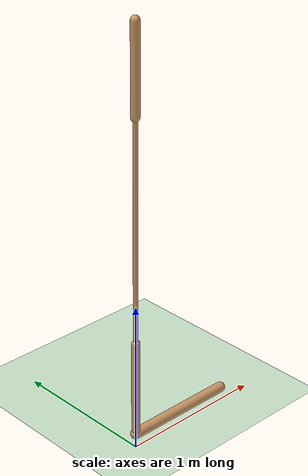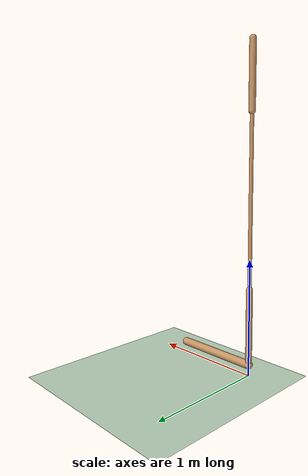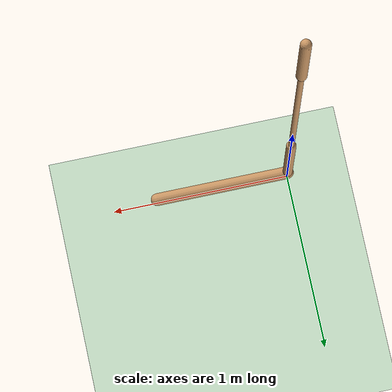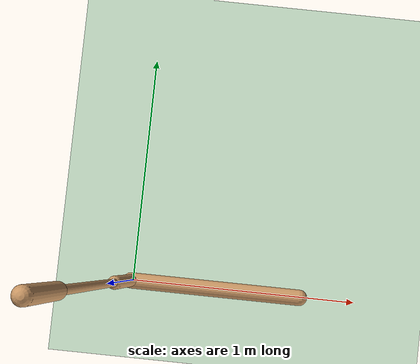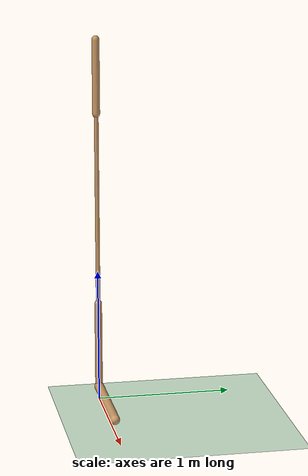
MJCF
<mujoco model="walker2d">
  <compiler angle="degree" inertiafromgeom="true" />
  <default>
    <joint armature="0.01" damping=".1" limited="true" />
    <geom conaffinity="0" condim="3" contype="1" density="1000" friction=".7 .1 .1" rgba="0.8 0.6 .4 1" />
  </default>
  <option integrator="RK4" timestep="0.002" />
  <worldbody>
    <light cutoff="100" diffuse="1 1 1" dir="-0 0 -1.3" directional="true" exponent="1" pos="0 0 1.3" specular=".1 .1 .1" />
    <geom conaffinity="1" condim="3" name="floor" pos="0 0 0" rgba="0.8 0.9 0.8 1" size="40 40 40" type="plane" material="MatPlane" />
    <body name="torso" pos="0 0 2.47319678068161">
      <camera name="track" mode="trackcom" pos="0 -5 -1.25" xyaxes="1 0 0 0 0 1" />
      <joint armature="0" axis="1 0 0" damping="0" limited="false" name="rootx" pos="0 0 -1.25" stiffness="0" type="slide" />
      <joint armature="0" axis="0 0 1" damping="0" limited="false" name="rootz" pos="0 0 -1.25" ref="1.25" stiffness="0" type="slide" />
      <joint armature="0" axis="0 1 0" damping="0" limited="false" name="rooty" pos="0 0 0" stiffness="0" type="hinge" />
      <geom friction="0.9" name="torso_geom" size="0.028003601357340813 0.27390056848526" type="capsule" />
      <body name="thigh" pos="0 0 -0.27390056848526">
        <joint axis="0 -1 0" name="thigh_joint" pos="0 0 0" range="-150 0" type="hinge" />
        <site name="torso_thigh_site" pos="0 0 0" size="0.01" type="sphere" rgba="1 0 0 0.5" />
        <geom friction="0.9" pos="0 0 -0.7234289050102234" name="thigh_geom" size="0.015948958694934845 0.7234289050102234" type="capsule" />
        <body name="leg" pos="0 0 -1.7730770111083984">
          <joint axis="0 -1 0" name="leg_joint" pos="0 0 0.32621920108795166" range="-150 0" type="hinge" />
          <site name="thigh_leg_site" pos="0 0 0.25" size="0.01" type="sphere" rgba="1 0 0 0.5" />
          <geom friction="0.9" name="leg_geom" size="0.02740592136979103 0.32621920108795166" type="capsule" />
          <body name="foot" pos="0.7515577077865601 0 -0.42621920108795164">
            <joint axis="0 -1 0" name="foot_joint" pos="-0.7515577077865601 0 0.1" range="-45 45" type="hinge" />
            <site name="leg_foot_site" pos="-0.2 0 0.1" size="0.01" type="sphere" rgba="1 0 0 0.5" />
            <geom friction="0.9" pos="-0.37577885389328003 0 0.1" quat="0.70710678118654757 0 -0.70710678118654746 0" name="foot_geom" size="0.03524205833673477 0.37577885389328003" type="capsule" />
          </body>
        </body>
      </body>

      <body name="thigh_left" pos="0 0 -0.27390056848526">
        <joint axis="0 -1 0" name="thigh_left_joint" pos="0 0 0" range="-150 0" type="hinge" />
        <site name="torso_thigh_left_site" pos="0 0 0" size="0.01" type="sphere" rgba="1 0 0 0.5" />
        <geom friction="0.9" name="thigh_left_geom" rgba=".7 .3 .6 1" size="0.015948958694934845 0.7234289050102234" pos="0 0 -0.7234289050102234" type="capsule" />
        <body name="leg_left" pos="0 0 -1.7730770111083984">
          <joint axis="0 -1 0" name="leg_left_joint" pos="0 0 0.32621920108795166" range="-150 0" type="hinge" />
          <site name="thigh_leg_left_site" pos="0 0 0.25" size="0.01" type="sphere" rgba="1 0 0 0.5" />
          <geom friction="0.9" name="leg_left_geom" rgba=".7 .3 .6 1" size="0.02740592136979103 0.32621920108795166" type="capsule" />
          <body name="foot_left" pos="0.7515577077865601 0 -0.42621920108795164">
            <joint axis="0 -1 0" name="foot_left_joint" pos="-0.7515577077865601 0 0.1" range="-45 45" type="hinge" />
            <site name="leg_foot_left_site" pos="-0.2 0 0.1" size="0.01" type="sphere" rgba="1 0 0 0.5" />
            <geom friction="1.9" name="foot_left_geom" rgba=".7 .3 .6 1" size="0.03524205833673477 0.37577885389328003" pos="-0.37577885389328003 0 0.1" type="capsule" quat="0.70710678118654757 0 -0.70710678118654746 0" />
          </body>
        </body>
      </body>
    </body>
  </worldbody>
  <actuator>

    <motor ctrllimited="true" ctrlrange="-1.0 1.0" gear="32.714327501590965" joint="thigh_joint" />
    <motor ctrllimited="true" ctrlrange="-1.0 1.0" gear="61.25454851568194" joint="leg_joint" />
    <motor ctrllimited="true" ctrlrange="-1.0 1.0" gear="129.6439839022778" joint="foot_joint" />
    <motor ctrllimited="true" ctrlrange="-1.0 1.0" gear="32.714327501590965" joint="thigh_left_joint" />
    <motor ctrllimited="true" ctrlrange="-1.0 1.0" gear="61.25454851568194" joint="leg_left_joint" />
    <motor ctrllimited="true" ctrlrange="-1.0 1.0" gear="129.6439839022778" joint="foot_left_joint" />

  </actuator>
    <asset>
        <texture type="skybox" builtin="gradient" rgb1=".4 .5 .6" rgb2="0 0 0" width="100" height="100" />
        <texture builtin="flat" height="1278" mark="cross" markrgb="1 1 1" name="texgeom" random="0.01" rgb1="0.8 0.6 0.4" rgb2="0.8 0.6 0.4" type="cube" width="127" />
        <texture builtin="checker" height="100" name="texplane" rgb1="0 0 0" rgb2="0.8 0.8 0.8" type="2d" width="100" />
        <material name="MatPlane" reflectance="0.5" shininess="1" specular="1" texrepeat="60 60" texture="texplane" />
        <material name="geom" texture="texgeom" texuniform="true" />
    </asset>

  <sensor>
    <force site="torso_thigh_site" name="torso_thigh_sensor" />
    <force site="thigh_leg_site" name="thigh_leg_sensor" />
    <force site="leg_foot_site" name="leg_foot_sensor" />
    <force site="torso_thigh_left_site" name="torso_thigh_left_sensor" />
    <force site="thigh_leg_left_site" name="thigh_leg_left_sensor" />
    <force site="leg_foot_left_site" name="leg_foot_left_sensor" />
  </sensor>
</mujoco>
